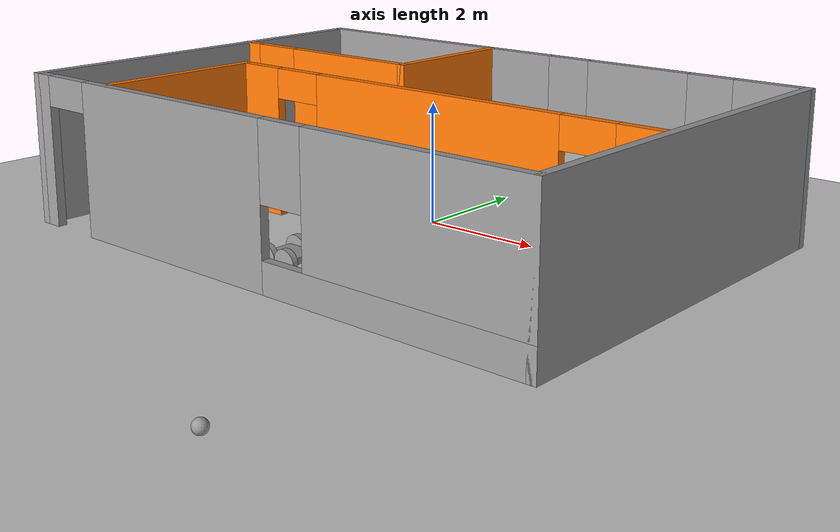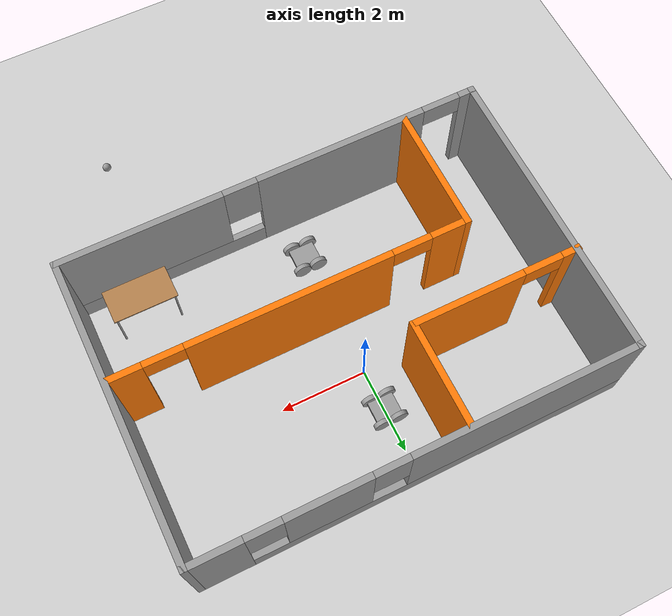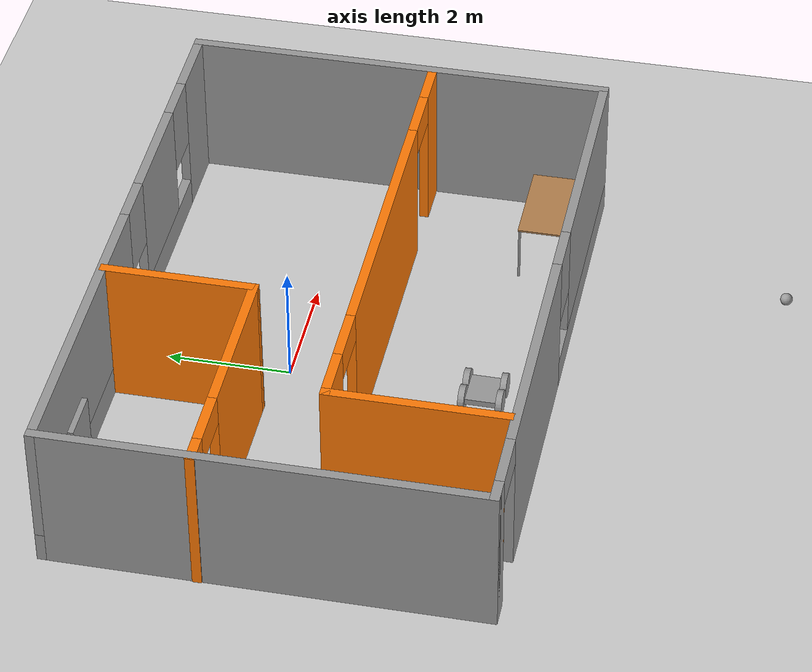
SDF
<sdf version="1.6">
 <world name="default">
  <plugin name="hello" filename="libhello.so"/>
  <light name="sun" type="directional">
   <pose>0 0 10 0 -0 0</pose>
   <diffuse>0.8 0.8 0.8 1</diffuse>
   <specular>0.2 0.2 0.2 1</specular>
   <attenuation>
    <range>1000</range>
    <constant>0.9</constant>
    <linear>0.01</linear>
    <quadratic>0.001</quadratic>
   </attenuation>
   <direction>-0.5 0.1 -0.9</direction>
  </light>
  <model name="ground_plane">
   <static>1</static>
   <link name="link">
    <collision name="collision">
     <geometry><plane><normal>0 0 1</normal><size>100 100</size></plane></geometry>
     <surface>
      <contact><collide_bitmask>65535</collide_bitmask></contact>
      <friction><ode><mu>100</mu><mu2>50</mu2></ode></friction>
     </surface>
    </collision>
    <visual name="visual">
     <cast_shadows>0</cast_shadows>
     <geometry><plane><normal>0 0 1</normal><size>100 100</size></plane></geometry>
     <material>
      <script><uri>file://media/materials/scripts/gazebo.material</uri><name>Gazebo/Grey</name></script>
     </material>
    </visual>
   </link>
  </model>
  <gravity>0 0 -9.8</gravity>
  <magnetic_field>6e-06 2.3e-05 -4.2e-05</magnetic_field>
  <atmosphere type="adiabatic"/>
  <physics name="default_physics" default="0" type="ode">
   <max_step_size>0.001</max_step_size>
   <real_time_factor>1</real_time_factor>
   <real_time_update_rate>1000</real_time_update_rate>
  </physics>
  <scene><ambient>0.4 0.4 0.4 1</ambient><background>0.7 0.7 0.7 1</background><shadows>1</shadows></scene>
  <spherical_coordinates>
   <surface_model>EARTH_WGS84</surface_model>
   <latitude_deg>0</latitude_deg>
   <longitude_deg>0</longitude_deg>
   <elevation>0</elevation>
   <heading_deg>0</heading_deg>
  </spherical_coordinates>
  <model name="MyRobot">
   <link name="link_0">
    <pose>0 0 -8.6e-05 0 -0 0</pose>
    <inertial>
     <mass>1</mass>
     <inertia>
      <ixx>0.166667</ixx>
      <ixy>0</ixy>
      <ixz>0</ixz>
      <iyy>0.166667</iyy>
      <iyz>0</iyz>
      <izz>0.166667</izz>
     </inertia>
    </inertial>
    <visual name="visual">
     <geometry><box><size>0.6 0.5 0.1</size></box></geometry>
     <material>
      <lighting>1</lighting>
      <script><uri>file://media/materials/scripts/gazebo.material</uri><name>Gazebo/Grey</name></script>
      <shader type="pixel"><normal_map>__default__</normal_map></shader>
      <ambient>0.3 0.3 0.3 1</ambient>
      <diffuse>0.7 0.7 0.7 1</diffuse>
      <specular>0.01 0.01 0.01 1</specular>
      <emissive>0 0 0 1</emissive>
     </material>
    </visual>
    <collision name="collision">
     <geometry><box><size>0.6 0.5 0.1</size></box></geometry>
     <surface>
      <friction>
       <ode><mu>1</mu><mu2>1</mu2><fdir1>0 0 0</fdir1><slip1>0</slip1><slip2>0</slip2></ode>
       <torsional>
        <coefficient>1</coefficient>
        <patch_radius>0</patch_radius>
        <surface_radius>0</surface_radius>
        <use_patch_radius>1</use_patch_radius>
        <ode><slip>0</slip></ode>
       </torsional>
      </friction>
      <bounce><restitution_coefficient>0</restitution_coefficient><threshold>1e+06</threshold></bounce>
      <contact>
       <collide_without_contact>0</collide_without_contact>
       <collide_without_contact_bitmask>1</collide_without_contact_bitmask>
       <collide_bitmask>1</collide_bitmask>
       <ode>
        <soft_cfm>0</soft_cfm>
        <soft_erp>0.2</soft_erp>
        <kp>1e+13</kp>
        <kd>1</kd>
        <max_vel>0.01</max_vel>
        <min_depth>0</min_depth>
       </ode>
       <bullet>
        <split_impulse>1</split_impulse>
        <split_impulse_penetration_threshold>-0.01</split_impulse_penetration_threshold>
        <soft_cfm>0</soft_cfm>
        <soft_erp>0.2</soft_erp>
        <kp>1e+13</kp>
        <kd>1</kd>
       </bullet>
      </contact>
     </surface>
    </collision>
   </link>
   <link name="link_1">
    <pose>0.2 -0.300019 2.1e-05 1.5707 -0 0</pose>
    <inertial>
     <mass>1</mass>
     <inertia><ixx>0.145833</ixx><ixy>0</ixy><ixz>0</ixz><iyy>0.145833</iyy><iyz>0</iyz><izz>0.125</izz></inertia>
    </inertial>
    <visual name="visual">
     <geometry><cylinder><radius>0.2</radius><length>0.1</length></cylinder></geometry>
     <material>
      <lighting>1</lighting>
      <script><uri>file://media/materials/scripts/gazebo.material</uri><name>Gazebo/Grey</name></script>
      <shader type="pixel"><normal_map>__default__</normal_map></shader>
      <ambient>0.3 0.3 0.3 1</ambient>
      <diffuse>0.7 0.7 0.7 1</diffuse>
      <specular>0.01 0.01 0.01 1</specular>
      <emissive>0 0 0 1</emissive>
     </material>
    </visual>
    <collision name="collision">
     <geometry><cylinder><radius>0.2</radius><length>0.1</length></cylinder></geometry>
     <surface>
      <friction>
       <ode><mu>1</mu><mu2>1</mu2><fdir1>0 0 0</fdir1><slip1>0</slip1><slip2>0</slip2></ode>
       <torsional>
        <coefficient>1</coefficient>
        <patch_radius>0</patch_radius>
        <surface_radius>0</surface_radius>
        <use_patch_radius>1</use_patch_radius>
        <ode><slip>0</slip></ode>
       </torsional>
      </friction>
      <bounce><restitution_coefficient>0</restitution_coefficient><threshold>1e+06</threshold></bounce>
      <contact>
       <collide_without_contact>0</collide_without_contact>
       <collide_without_contact_bitmask>1</collide_without_contact_bitmask>
       <collide_bitmask>1</collide_bitmask>
       <ode>
        <soft_cfm>0</soft_cfm>
        <soft_erp>0.2</soft_erp>
        <kp>1e+13</kp>
        <kd>1</kd>
        <max_vel>0.01</max_vel>
        <min_depth>0</min_depth>
       </ode>
       <bullet>
        <split_impulse>1</split_impulse>
        <split_impulse_penetration_threshold>-0.01</split_impulse_penetration_threshold>
        <soft_cfm>0</soft_cfm>
        <soft_erp>0.2</soft_erp>
        <kp>1e+13</kp>
        <kd>1</kd>
       </bullet>
      </contact>
     </surface>
    </collision>
   </link>
   <link name="link_1_clone">
    <pose>0.2 0.300019 2.1e-05 1.5707 -0 0</pose>
    <inertial>
     <mass>1</mass>
     <inertia><ixx>0.145833</ixx><ixy>0</ixy><ixz>0</ixz><iyy>0.145833</iyy><iyz>0</iyz><izz>0.125</izz></inertia>
    </inertial>
    <visual name="visual">
     <geometry><cylinder><radius>0.2</radius><length>0.1</length></cylinder></geometry>
     <material>
      <lighting>1</lighting>
      <script><uri>file://media/materials/scripts/gazebo.material</uri><name>Gazebo/Grey</name></script>
      <shader type="pixel"><normal_map>__default__</normal_map></shader>
      <ambient>0.3 0.3 0.3 1</ambient>
      <diffuse>0.7 0.7 0.7 1</diffuse>
      <specular>0.01 0.01 0.01 1</specular>
      <emissive>0 0 0 1</emissive>
     </material>
    </visual>
    <collision name="collision">
     <geometry><cylinder><radius>0.2</radius><length>0.1</length></cylinder></geometry>
     <surface>
      <friction>
       <ode><mu>1</mu><mu2>1</mu2><fdir1>0 0 0</fdir1><slip1>0</slip1><slip2>0</slip2></ode>
       <torsional>
        <coefficient>1</coefficient>
        <patch_radius>0</patch_radius>
        <surface_radius>0</surface_radius>
        <use_patch_radius>1</use_patch_radius>
        <ode><slip>0</slip></ode>
       </torsional>
      </friction>
      <bounce><restitution_coefficient>0</restitution_coefficient><threshold>1e+06</threshold></bounce>
      <contact>
       <collide_without_contact>0</collide_without_contact>
       <collide_without_contact_bitmask>1</collide_without_contact_bitmask>
       <collide_bitmask>1</collide_bitmask>
       <ode>
        <soft_cfm>0</soft_cfm>
        <soft_erp>0.2</soft_erp>
        <kp>1e+13</kp>
        <kd>1</kd>
        <max_vel>0.01</max_vel>
        <min_depth>0</min_depth>
       </ode>
       <bullet>
        <split_impulse>1</split_impulse>
        <split_impulse_penetration_threshold>-0.01</split_impulse_penetration_threshold>
        <soft_cfm>0</soft_cfm>
        <soft_erp>0.2</soft_erp>
        <kp>1e+13</kp>
        <kd>1</kd>
       </bullet>
      </contact>
     </surface>
    </collision>
   </link>
   <link name="link_1_clone_0">
    <pose>-0.2 0.300019 2.1e-05 1.5707 -0 0</pose>
    <inertial>
     <mass>1</mass>
     <inertia><ixx>0.145833</ixx><ixy>0</ixy><ixz>0</ixz><iyy>0.145833</iyy><iyz>0</iyz><izz>0.125</izz></inertia>
    </inertial>
    <visual name="visual">
     <geometry><cylinder><radius>0.2</radius><length>0.1</length></cylinder></geometry>
     <material>
      <lighting>1</lighting>
      <script><uri>file://media/materials/scripts/gazebo.material</uri><name>Gazebo/Grey</name></script>
      <shader type="pixel"><normal_map>__default__</normal_map></shader>
      <ambient>0.3 0.3 0.3 1</ambient>
      <diffuse>0.7 0.7 0.7 1</diffuse>
      <specular>0.01 0.01 0.01 1</specular>
      <emissive>0 0 0 1</emissive>
     </material>
    </visual>
    <collision name="collision">
     <geometry><cylinder><radius>0.2</radius><length>0.1</length></cylinder></geometry>
     <surface>
      <friction>
       <ode><mu>1</mu><mu2>1</mu2><fdir1>0 0 0</fdir1><slip1>0</slip1><slip2>0</slip2></ode>
       <torsional>
        <coefficient>1</coefficient>
        <patch_radius>0</patch_radius>
        <surface_radius>0</surface_radius>
        <use_patch_radius>1</use_patch_radius>
        <ode><slip>0</slip></ode>
       </torsional>
      </friction>
      <bounce><restitution_coefficient>0</restitution_coefficient><threshold>1e+06</threshold></bounce>
      <contact>
       <collide_without_contact>0</collide_without_contact>
       <collide_without_contact_bitmask>1</collide_without_contact_bitmask>
       <collide_bitmask>1</collide_bitmask>
       <ode>
        <soft_cfm>0</soft_cfm>
        <soft_erp>0.2</soft_erp>
        <kp>1e+13</kp>
        <kd>1</kd>
        <max_vel>0.01</max_vel>
        <min_depth>0</min_depth>
       </ode>
       <bullet>
        <split_impulse>1</split_impulse>
        <split_impulse_penetration_threshold>-0.01</split_impulse_penetration_threshold>
        <soft_cfm>0</soft_cfm>
        <soft_erp>0.2</soft_erp>
        <kp>1e+13</kp>
        <kd>1</kd>
       </bullet>
      </contact>
     </surface>
    </collision>
   </link>
   <link name="link_1_clone_1">
    <pose>-0.2 -0.300019 2.1e-05 1.5707 -0 0</pose>
    <inertial>
     <mass>1</mass>
     <inertia><ixx>0.145833</ixx><ixy>0</ixy><ixz>0</ixz><iyy>0.145833</iyy><iyz>0</iyz><izz>0.125</izz></inertia>
    </inertial>
    <visual name="visual">
     <geometry><cylinder><radius>0.2</radius><length>0.1</length></cylinder></geometry>
     <material>
      <lighting>1</lighting>
      <script><uri>file://media/materials/scripts/gazebo.material</uri><name>Gazebo/Grey</name></script>
      <shader type="pixel"><normal_map>__default__</normal_map></shader>
      <ambient>0.3 0.3 0.3 1</ambient>
      <diffuse>0.7 0.7 0.7 1</diffuse>
      <specular>0.01 0.01 0.01 1</specular>
      <emissive>0 0 0 1</emissive>
     </material>
    </visual>
    <collision name="collision">
     <geometry><cylinder><radius>0.2</radius><length>0.1</length></cylinder></geometry>
     <surface>
      <friction>
       <ode><mu>1</mu><mu2>1</mu2><fdir1>0 0 0</fdir1><slip1>0</slip1><slip2>0</slip2></ode>
       <torsional>
        <coefficient>1</coefficient>
        <patch_radius>0</patch_radius>
        <surface_radius>0</surface_radius>
        <use_patch_radius>1</use_patch_radius>
        <ode><slip>0</slip></ode>
       </torsional>
      </friction>
      <bounce><restitution_coefficient>0</restitution_coefficient><threshold>1e+06</threshold></bounce>
      <contact>
       <collide_without_contact>0</collide_without_contact>
       <collide_without_contact_bitmask>1</collide_without_contact_bitmask>
       <collide_bitmask>1</collide_bitmask>
       <ode>
        <soft_cfm>0</soft_cfm>
        <soft_erp>0.2</soft_erp>
        <kp>1e+13</kp>
        <kd>1</kd>
        <max_vel>0.01</max_vel>
        <min_depth>0</min_depth>
       </ode>
       <bullet>
        <split_impulse>1</split_impulse>
        <split_impulse_penetration_threshold>-0.01</split_impulse_penetration_threshold>
        <soft_cfm>0</soft_cfm>
        <soft_erp>0.2</soft_erp>
        <kp>1e+13</kp>
        <kd>1</kd>
       </bullet>
      </contact>
     </surface>
    </collision>
   </link>
   <joint name="link_0_JOINT_0" type="revolute">
    <parent>link_0</parent>
    <child>link_1</child>
    <axis>
     <xyz>0 0 1</xyz>
     <use_parent_model_frame>0</use_parent_model_frame>
     <limit>
      <lower>-1.79769e+308</lower>
      <upper>1.79769e+308</upper>
      <effort>-1</effort>
      <velocity>-1</velocity>
     </limit>
     <dynamics>
      <spring_reference>0</spring_reference>
      <spring_stiffness>0</spring_stiffness>
      <damping>0</damping>
      <friction>0</friction>
     </dynamics>
    </axis>
    <physics>
     <ode><limit><cfm>0</cfm><erp>0.2</erp></limit><suspension><cfm>0</cfm><erp>0.2</erp></suspension></ode>
    </physics>
   </joint>
   <joint name="link_0_JOINT_1" type="revolute">
    <parent>link_0</parent>
    <child>link_1_clone_1</child>
    <axis>
     <xyz>0 0 1</xyz>
     <use_parent_model_frame>0</use_parent_model_frame>
     <limit>
      <lower>-1.79769e+308</lower>
      <upper>1.79769e+308</upper>
      <effort>-1</effort>
      <velocity>-1</velocity>
     </limit>
     <dynamics>
      <spring_reference>0</spring_reference>
      <spring_stiffness>0</spring_stiffness>
      <damping>0</damping>
     </dynamics>
    </axis>
    <physics>
     <ode><limit><cfm>0</cfm><erp>0.2</erp></limit><suspension><cfm>0</cfm><erp>0.2</erp></suspension></ode>
    </physics>
   </joint>
   <joint name="link_0_JOINT_2" type="revolute">
    <parent>link_0</parent>
    <child>link_1_clone_0</child>
    <axis>
     <xyz>0 0 1</xyz>
     <use_parent_model_frame>0</use_parent_model_frame>
     <limit>
      <lower>-1.79769e+308</lower>
      <upper>1.79769e+308</upper>
      <effort>-1</effort>
      <velocity>-1</velocity>
     </limit>
     <dynamics>
      <spring_reference>0</spring_reference>
      <spring_stiffness>0</spring_stiffness>
      <damping>0</damping>
     </dynamics>
    </axis>
    <physics>
     <ode><limit><cfm>0</cfm><erp>0.2</erp></limit><suspension><cfm>0</cfm><erp>0.2</erp></suspension></ode>
    </physics>
   </joint>
   <joint name="link_0_JOINT_3" type="revolute">
    <parent>link_0</parent>
    <child>link_1_clone</child>
    <axis>
     <xyz>0 0 1</xyz>
     <use_parent_model_frame>0</use_parent_model_frame>
     <limit>
      <lower>-1.79769e+308</lower>
      <upper>1.79769e+308</upper>
      <effort>-1</effort>
      <velocity>-1</velocity>
     </limit>
     <dynamics>
      <spring_reference>0</spring_reference>
      <spring_stiffness>0</spring_stiffness>
      <damping>0</damping>
     </dynamics>
    </axis>
    <physics>
     <ode><limit><cfm>0</cfm><erp>0.2</erp></limit><suspension><cfm>0</cfm><erp>0.2</erp></suspension></ode>
    </physics>
   </joint>
   <static>0</static>
   <pose>-0.001163 0.998009 0.199984 3e-06 4e-06 -0.002136</pose>
  </model>
  <model name="MyRobot_clone">
   <link name="link_0">
    <pose>0 0 -8.6e-05 0 -0 0</pose>
    <inertial>
     <mass>1</mass>
     <inertia>
      <ixx>0.166667</ixx>
      <ixy>0</ixy>
      <ixz>0</ixz>
      <iyy>0.166667</iyy>
      <iyz>0</iyz>
      <izz>0.166667</izz>
     </inertia>
    </inertial>
    <visual name="visual">
     <geometry><box><size>0.6 0.5 0.1</size></box></geometry>
     <material>
      <lighting>1</lighting>
      <script><uri>file://media/materials/scripts/gazebo.material</uri><name>Gazebo/Grey</name></script>
      <shader type="pixel"><normal_map>__default__</normal_map></shader>
      <ambient>0.3 0.3 0.3 1</ambient>
      <diffuse>0.7 0.7 0.7 1</diffuse>
      <specular>0.01 0.01 0.01 1</specular>
      <emissive>0 0 0 1</emissive>
     </material>
    </visual>
    <collision name="collision">
     <geometry><box><size>0.6 0.5 0.1</size></box></geometry>
     <surface>
      <friction>
       <ode><mu>1</mu><mu2>1</mu2><fdir1>0 0 0</fdir1><slip1>0</slip1><slip2>0</slip2></ode>
       <torsional>
        <coefficient>1</coefficient>
        <patch_radius>0</patch_radius>
        <surface_radius>0</surface_radius>
        <use_patch_radius>1</use_patch_radius>
        <ode><slip>0</slip></ode>
       </torsional>
      </friction>
      <bounce><restitution_coefficient>0</restitution_coefficient><threshold>1e+06</threshold></bounce>
      <contact>
       <collide_without_contact>0</collide_without_contact>
       <collide_without_contact_bitmask>1</collide_without_contact_bitmask>
       <collide_bitmask>1</collide_bitmask>
       <ode>
        <soft_cfm>0</soft_cfm>
        <soft_erp>0.2</soft_erp>
        <kp>1e+13</kp>
        <kd>1</kd>
        <max_vel>0.01</max_vel>
        <min_depth>0</min_depth>
       </ode>
       <bullet>
        <split_impulse>1</split_impulse>
        <split_impulse_penetration_threshold>-0.01</split_impulse_penetration_threshold>
        <soft_cfm>0</soft_cfm>
        <soft_erp>0.2</soft_erp>
        <kp>1e+13</kp>
        <kd>1</kd>
       </bullet>
      </contact>
     </surface>
    </collision>
   </link>
   <link name="link_1">
    <pose>0.2 -0.300019 2.1e-05 1.5707 -0 0</pose>
    <inertial>
     <mass>1</mass>
     <inertia><ixx>0.145833</ixx><ixy>0</ixy><ixz>0</ixz><iyy>0.145833</iyy><iyz>0</iyz><izz>0.125</izz></inertia>
    </inertial>
    <visual name="visual">
     <geometry><cylinder><radius>0.2</radius><length>0.1</length></cylinder></geometry>
     <material>
      <lighting>1</lighting>
      <script><uri>file://media/materials/scripts/gazebo.material</uri><name>Gazebo/Grey</name></script>
      <shader type="pixel"><normal_map>__default__</normal_map></shader>
      <ambient>0.3 0.3 0.3 1</ambient>
      <diffuse>0.7 0.7 0.7 1</diffuse>
      <specular>0.01 0.01 0.01 1</specular>
      <emissive>0 0 0 1</emissive>
     </material>
    </visual>
    <collision name="collision">
     <geometry><cylinder><radius>0.2</radius><length>0.1</length></cylinder></geometry>
     <surface>
      <friction>
       <ode><mu>1</mu><mu2>1</mu2><fdir1>0 0 0</fdir1><slip1>0</slip1><slip2>0</slip2></ode>
       <torsional>
        <coefficient>1</coefficient>
        <patch_radius>0</patch_radius>
        <surface_radius>0</surface_radius>
        <use_patch_radius>1</use_patch_radius>
        <ode><slip>0</slip></ode>
       </torsional>
      </friction>
      <bounce><restitution_coefficient>0</restitution_coefficient><threshold>1e+06</threshold></bounce>
      <contact>
       <collide_without_contact>0</collide_without_contact>
       <collide_without_contact_bitmask>1</collide_without_contact_bitmask>
       <collide_bitmask>1</collide_bitmask>
       <ode>
        <soft_cfm>0</soft_cfm>
        <soft_erp>0.2</soft_erp>
        <kp>1e+13</kp>
        <kd>1</kd>
        <max_vel>0.01</max_vel>
        <min_depth>0</min_depth>
       </ode>
       <bullet>
        <split_impulse>1</split_impulse>
        <split_impulse_penetration_threshold>-0.01</split_impulse_penetration_threshold>
        <soft_cfm>0</soft_cfm>
        <soft_erp>0.2</soft_erp>
        <kp>1e+13</kp>
        <kd>1</kd>
       </bullet>
      </contact>
     </surface>
    </collision>
   </link>
   <link name="link_1_clone">
    <pose>0.2 0.300019 2.1e-05 1.5707 -0 0</pose>
    <inertial>
     <mass>1</mass>
     <inertia><ixx>0.145833</ixx><ixy>0</ixy><ixz>0</ixz><iyy>0.145833</iyy><iyz>0</iyz><izz>0.125</izz></inertia>
    </inertial>
    <visual name="visual">
     <geometry><cylinder><radius>0.2</radius><length>0.1</length></cylinder></geometry>
     <material>
      <lighting>1</lighting>
      <script><uri>file://media/materials/scripts/gazebo.material</uri><name>Gazebo/Grey</name></script>
      <shader type="pixel"><normal_map>__default__</normal_map></shader>
      <ambient>0.3 0.3 0.3 1</ambient>
      <diffuse>0.7 0.7 0.7 1</diffuse>
      <specular>0.01 0.01 0.01 1</specular>
      <emissive>0 0 0 1</emissive>
     </material>
    </visual>
    <collision name="collision">
     <geometry><cylinder><radius>0.2</radius><length>0.1</length></cylinder></geometry>
     <surface>
      <friction>
       <ode><mu>1</mu><mu2>1</mu2><fdir1>0 0 0</fdir1><slip1>0</slip1><slip2>0</slip2></ode>
       <torsional>
        <coefficient>1</coefficient>
        <patch_radius>0</patch_radius>
        <surface_radius>0</surface_radius>
        <use_patch_radius>1</use_patch_radius>
        <ode><slip>0</slip></ode>
       </torsional>
      </friction>
      <bounce><restitution_coefficient>0</restitution_coefficient><threshold>1e+06</threshold></bounce>
      <contact>
       <collide_without_contact>0</collide_without_contact>
       <collide_without_contact_bitmask>1</collide_without_contact_bitmask>
       <collide_bitmask>1</collide_bitmask>
       <ode>
        <soft_cfm>0</soft_cfm>
        <soft_erp>0.2</soft_erp>
        <kp>1e+13</kp>
        <kd>1</kd>
        <max_vel>0.01</max_vel>
        <min_depth>0</min_depth>
       </ode>
       <bullet>
        <split_impulse>1</split_impulse>
        <split_impulse_penetration_threshold>-0.01</split_impulse_penetration_threshold>
        <soft_cfm>0</soft_cfm>
        <soft_erp>0.2</soft_erp>
        <kp>1e+13</kp>
        <kd>1</kd>
       </bullet>
      </contact>
     </surface>
    </collision>
   </link>
   <link name="link_1_clone_0">
    <pose>-0.2 0.300019 2.1e-05 1.5707 -0 0</pose>
    <inertial>
     <mass>1</mass>
     <inertia><ixx>0.145833</ixx><ixy>0</ixy><ixz>0</ixz><iyy>0.145833</iyy><iyz>0</iyz><izz>0.125</izz></inertia>
    </inertial>
    <visual name="visual">
     <geometry><cylinder><radius>0.2</radius><length>0.1</length></cylinder></geometry>
     <material>
      <lighting>1</lighting>
      <script><uri>file://media/materials/scripts/gazebo.material</uri><name>Gazebo/Grey</name></script>
      <shader type="pixel"><normal_map>__default__</normal_map></shader>
      <ambient>0.3 0.3 0.3 1</ambient>
      <diffuse>0.7 0.7 0.7 1</diffuse>
      <specular>0.01 0.01 0.01 1</specular>
      <emissive>0 0 0 1</emissive>
     </material>
    </visual>
    <collision name="collision">
     <geometry><cylinder><radius>0.2</radius><length>0.1</length></cylinder></geometry>
     <surface>
      <friction>
       <ode><mu>1</mu><mu2>1</mu2><fdir1>0 0 0</fdir1><slip1>0</slip1><slip2>0</slip2></ode>
       <torsional>
        <coefficient>1</coefficient>
        <patch_radius>0</patch_radius>
        <surface_radius>0</surface_radius>
        <use_patch_radius>1</use_patch_radius>
        <ode><slip>0</slip></ode>
       </torsional>
      </friction>
      <bounce><restitution_coefficient>0</restitution_coefficient><threshold>1e+06</threshold></bounce>
      <contact>
       <collide_without_contact>0</collide_without_contact>
       <collide_without_contact_bitmask>1</collide_without_contact_bitmask>
       <collide_bitmask>1</collide_bitmask>
       <ode>
        <soft_cfm>0</soft_cfm>
        <soft_erp>0.2</soft_erp>
        <kp>1e+13</kp>
        <kd>1</kd>
        <max_vel>0.01</max_vel>
        <min_depth>0</min_depth>
       </ode>
       <bullet>
        <split_impulse>1</split_impulse>
        <split_impulse_penetration_threshold>-0.01</split_impulse_penetration_threshold>
        <soft_cfm>0</soft_cfm>
        <soft_erp>0.2</soft_erp>
        <kp>1e+13</kp>
        <kd>1</kd>
       </bullet>
      </contact>
     </surface>
    </collision>
   </link>
   <link name="link_1_clone_1">
    <pose>-0.2 -0.300019 2.1e-05 1.5707 -0 0</pose>
    <inertial>
     <mass>1</mass>
     <inertia><ixx>0.145833</ixx><ixy>0</ixy><ixz>0</ixz><iyy>0.145833</iyy><iyz>0</iyz><izz>0.125</izz></inertia>
    </inertial>
    <visual name="visual">
     <geometry><cylinder><radius>0.2</radius><length>0.1</length></cylinder></geometry>
     <material>
      <lighting>1</lighting>
      <script><uri>file://media/materials/scripts/gazebo.material</uri><name>Gazebo/Grey</name></script>
      <shader type="pixel"><normal_map>__default__</normal_map></shader>
      <ambient>0.3 0.3 0.3 1</ambient>
      <diffuse>0.7 0.7 0.7 1</diffuse>
      <specular>0.01 0.01 0.01 1</specular>
      <emissive>0 0 0 1</emissive>
     </material>
    </visual>
    <collision name="collision">
     <geometry><cylinder><radius>0.2</radius><length>0.1</length></cylinder></geometry>
     <surface>
      <friction>
       <ode><mu>1</mu><mu2>1</mu2><fdir1>0 0 0</fdir1><slip1>0</slip1><slip2>0</slip2></ode>
       <torsional>
        <coefficient>1</coefficient>
        <patch_radius>0</patch_radius>
        <surface_radius>0</surface_radius>
        <use_patch_radius>1</use_patch_radius>
        <ode><slip>0</slip></ode>
       </torsional>
      </friction>
      <bounce><restitution_coefficient>0</restitution_coefficient><threshold>1e+06</threshold></bounce>
      <contact>
       <collide_without_contact>0</collide_without_contact>
       <collide_without_contact_bitmask>1</collide_without_contact_bitmask>
       <collide_bitmask>1</collide_bitmask>
       <ode>
        <soft_cfm>0</soft_cfm>
        <soft_erp>0.2</soft_erp>
        <kp>1e+13</kp>
        <kd>1</kd>
        <max_vel>0.01</max_vel>
        <min_depth>0</min_depth>
       </ode>
       <bullet>
        <split_impulse>1</split_impulse>
        <split_impulse_penetration_threshold>-0.01</split_impulse_penetration_threshold>
        <soft_cfm>0</soft_cfm>
        <soft_erp>0.2</soft_erp>
        <kp>1e+13</kp>
        <kd>1</kd>
       </bullet>
      </contact>
     </surface>
    </collision>
   </link>
   <joint name="link_0_JOINT_0" type="revolute">
    <parent>link_0</parent>
    <child>link_1</child>
    <axis>
     <xyz>0 0 1</xyz>
     <use_parent_model_frame>0</use_parent_model_frame>
     <limit>
      <lower>-1.79769e+308</lower>
      <upper>1.79769e+308</upper>
      <effort>-1</effort>
      <velocity>-1</velocity>
     </limit>
     <dynamics>
      <spring_reference>0</spring_reference>
      <spring_stiffness>0</spring_stiffness>
      <damping>0</damping>
      <friction>0</friction>
     </dynamics>
    </axis>
    <physics>
     <ode><limit><cfm>0</cfm><erp>0.2</erp></limit><suspension><cfm>0</cfm><erp>0.2</erp></suspension></ode>
    </physics>
   </joint>
   <joint name="link_0_JOINT_1" type="revolute">
    <parent>link_0</parent>
    <child>link_1_clone_1</child>
    <axis>
     <xyz>0 0 1</xyz>
     <use_parent_model_frame>0</use_parent_model_frame>
     <limit>
      <lower>-1.79769e+308</lower>
      <upper>1.79769e+308</upper>
      <effort>-1</effort>
      <velocity>-1</velocity>
     </limit>
     <dynamics>
      <spring_reference>0</spring_reference>
      <spring_stiffness>0</spring_stiffness>
      <damping>0</damping>
     </dynamics>
    </axis>
    <physics>
     <ode><limit><cfm>0</cfm><erp>0.2</erp></limit><suspension><cfm>0</cfm><erp>0.2</erp></suspension></ode>
    </physics>
   </joint>
   <joint name="link_0_JOINT_2" type="revolute">
    <parent>link_0</parent>
    <child>link_1_clone_0</child>
    <axis>
     <xyz>0 0 1</xyz>
     <use_parent_model_frame>0</use_parent_model_frame>
     <limit>
      <lower>-1.79769e+308</lower>
      <upper>1.79769e+308</upper>
      <effort>-1</effort>
      <velocity>-1</velocity>
     </limit>
     <dynamics>
      <spring_reference>0</spring_reference>
      <spring_stiffness>0</spring_stiffness>
      <damping>0</damping>
     </dynamics>
    </axis>
    <physics>
     <ode><limit><cfm>0</cfm><erp>0.2</erp></limit><suspension><cfm>0</cfm><erp>0.2</erp></suspension></ode>
    </physics>
   </joint>
   <joint name="link_0_JOINT_3" type="revolute">
    <parent>link_0</parent>
    <child>link_1_clone</child>
    <axis>
     <xyz>0 0 1</xyz>
     <use_parent_model_frame>0</use_parent_model_frame>
     <limit>
      <lower>-1.79769e+308</lower>
      <upper>1.79769e+308</upper>
      <effort>-1</effort>
      <velocity>-1</velocity>
     </limit>
     <dynamics>
      <spring_reference>0</spring_reference>
      <spring_stiffness>0</spring_stiffness>
      <damping>0</damping>
     </dynamics>
    </axis>
    <physics>
     <ode><limit><cfm>0</cfm><erp>0.2</erp></limit><suspension><cfm>0</cfm><erp>0.2</erp></suspension></ode>
    </physics>
   </joint>
   <static>0</static>
   <pose>-0.046063 -3.13667 0.199984 3e-06 4e-06 -0.002147</pose>
  </model>
  <model name="MyBuilding_0">
   <pose>0.16674 -0.73219 0 0 -0 0</pose>
   <link name="Wall_53">
    <pose>0.008644 -3.425 0 0 -0 0</pose>
    <visual name="Wall_53_Visual_0">
     <pose>-4.79387 0 1.25 0 -0 0</pose>
     <geometry><box><size>0.412255 0.15 2.5</size></box></geometry>
     <material>
      <script><uri>file://media/materials/scripts/gazebo.material</uri><name>Gazebo/Grey</name></script>
      <ambient>1 1 1 1</ambient>
     </material>
     <meta><layer>0</layer></meta>
    </visual>
    <collision name="Wall_53_Collision_0">
     <geometry><box><size>0.412255 0.15 2.5</size></box></geometry>
     <pose>-4.79387 0 1.25 0 -0 0</pose>
    </collision>
    <visual name="Wall_53_Visual_1">
     <pose>-1.66895 0 1.25 0 -0 0</pose>
     <geometry><box><size>4.0376 0.15 2.5</size></box></geometry>
     <material>
      <script><uri>file://media/materials/scripts/gazebo.material</uri><name>Gazebo/Grey</name></script>
      <ambient>1 1 1 1</ambient>
     </material>
     <meta><layer>0</layer></meta>
    </visual>
    <collision name="Wall_53_Collision_1">
     <geometry><box><size>4.0376 0.15 2.5</size></box></geometry>
     <pose>-1.66895 0 1.25 0 -0 0</pose>
    </collision>
    <visual name="Wall_53_Visual_2">
     <pose>2.67493 0 0.25 0 -0 0</pose>
     <geometry><box><size>4.65015 0.15 0.5</size></box></geometry>
     <material>
      <script><uri>file://media/materials/scripts/gazebo.material</uri><name>Gazebo/Grey</name></script>
      <ambient>1 1 1 1</ambient>
     </material>
     <meta><layer>0</layer></meta>
    </visual>
    <collision name="Wall_53_Collision_2">
     <geometry><box><size>4.65015 0.15 0.5</size></box></geometry>
     <pose>2.67493 0 0.25 0 -0 0</pose>
    </collision>
    <visual name="Wall_53_Visual_3">
     <pose>3.07493 0 1.5 0 -0 0</pose>
     <geometry><box><size>3.85015 0.15 2</size></box></geometry>
     <material>
      <script><uri>file://media/materials/scripts/gazebo.material</uri><name>Gazebo/Grey</name></script>
      <ambient>1 1 1 1</ambient>
     </material>
     <meta><layer>0</layer></meta>
    </visual>
    <collision name="Wall_53_Collision_3">
     <geometry><box><size>3.85015 0.15 2</size></box></geometry>
     <pose>3.07493 0 1.5 0 -0 0</pose>
    </collision>
    <visual name="Wall_53_Visual_4">
     <pose>0.749853 0 1.9 0 -0 0</pose>
     <geometry><box><size>0.8 0.15 1.2</size></box></geometry>
     <material>
      <script><uri>file://media/materials/scripts/gazebo.material</uri><name>Gazebo/Grey</name></script>
      <ambient>1 1 1 1</ambient>
     </material>
     <meta><layer>0</layer></meta>
    </visual>
    <collision name="Wall_53_Collision_4">
     <geometry><box><size>0.8 0.15 1.2</size></box></geometry>
     <pose>0.749853 0 1.9 0 -0 0</pose>
    </collision>
    <visual name="Wall_53_Visual_5">
     <pose>-4.13774 0 2.25 0 -0 0</pose>
     <geometry><box><size>0.9 0.15 0.5</size></box></geometry>
     <material>
      <script><uri>file://media/materials/scripts/gazebo.material</uri><name>Gazebo/Grey</name></script>
      <ambient>1 1 1 1</ambient>
     </material>
     <meta><layer>0</layer></meta>
    </visual>
    <collision name="Wall_53_Collision_5">
     <geometry><box><size>0.9 0.15 0.5</size></box></geometry>
     <pose>-4.13774 0 2.25 0 -0 0</pose>
    </collision>
   </link>
   <link name="Wall_54">
    <collision name="Wall_54_Collision">
     <geometry><box><size>7 0.15 2.5</size></box></geometry>
     <pose>0 0 1.25 0 -0 0</pose>
    </collision>
    <visual name="Wall_54_Visual">
     <pose>0 0 1.25 0 -0 0</pose>
     <geometry><box><size>7 0.15 2.5</size></box></geometry>
     <material>
      <script><uri>file://media/materials/scripts/gazebo.material</uri><name>Gazebo/Grey</name></script>
      <ambient>1 1 1 1</ambient>
     </material>
     <meta><layer>0</layer></meta>
    </visual>
    <pose>4.93364 0 0 0 -0 1.5708</pose>
   </link>
   <link name="Wall_55">
    <pose>0.008644 3.425 0 0 -0 3.14159</pose>
    <visual name="Wall_55_Visual_0">
     <pose>-4.36219 0 1.25 0 -0 0</pose>
     <geometry><box><size>1.27561 0.15 2.5</size></box></geometry>
     <material>
      <script><uri>file://media/materials/scripts/gazebo.material</uri><name>Gazebo/Grey</name></script>
      <ambient>1 1 1 1</ambient>
     </material>
     <meta><layer>0</layer></meta>
    </visual>
    <collision name="Wall_55_Collision_0">
     <geometry><box><size>1.27561 0.15 2.5</size></box></geometry>
     <pose>-4.36219 0 1.25 0 -0 0</pose>
    </collision>
    <visual name="Wall_55_Visual_1">
     <pose>0.637805 0 0.25 0 -0 0</pose>
     <geometry><box><size>8.72439 0.15 0.5</size></box></geometry>
     <material>
      <script><uri>file://media/materials/scripts/gazebo.material</uri><name>Gazebo/Grey</name></script>
      <ambient>1 1 1 1</ambient>
     </material>
     <meta><layer>0</layer></meta>
    </visual>
    <collision name="Wall_55_Collision_1">
     <geometry><box><size>8.72439 0.15 0.5</size></box></geometry>
     <pose>0.637805 0 0.25 0 -0 0</pose>
    </collision>
    <visual name="Wall_55_Visual_2">
     <pose>-1.97678 0 1.5 0 -0 0</pose>
     <geometry><box><size>1.89522 0.15 2</size></box></geometry>
     <material>
      <script><uri>file://media/materials/scripts/gazebo.material</uri><name>Gazebo/Grey</name></script>
      <ambient>1 1 1 1</ambient>
     </material>
     <meta><layer>0</layer></meta>
    </visual>
    <collision name="Wall_55_Collision_2">
     <geometry><box><size>1.89522 0.15 2</size></box></geometry>
     <pose>-1.97678 0 1.5 0 -0 0</pose>
    </collision>
    <visual name="Wall_55_Visual_3">
     <pose>2.38541 0 1.5 0 -0 0</pose>
     <geometry><box><size>5.22917 0.15 2</size></box></geometry>
     <material>
      <script><uri>file://media/materials/scripts/gazebo.material</uri><name>Gazebo/Grey</name></script>
      <ambient>1 1 1 1</ambient>
     </material>
     <meta><layer>0</layer></meta>
    </visual>
    <collision name="Wall_55_Collision_3">
     <geometry><box><size>5.22917 0.15 2</size></box></geometry>
     <pose>2.38541 0 1.5 0 -0 0</pose>
    </collision>
    <visual name="Wall_55_Visual_4">
     <pose>-3.32439 0 1.9 0 -0 0</pose>
     <geometry><box><size>0.8 0.15 1.2</size></box></geometry>
     <material>
      <script><uri>file://media/materials/scripts/gazebo.material</uri><name>Gazebo/Grey</name></script>
      <ambient>1 1 1 1</ambient>
     </material>
     <meta><layer>0</layer></meta>
    </visual>
    <collision name="Wall_55_Collision_4">
     <geometry><box><size>0.8 0.15 1.2</size></box></geometry>
     <pose>-3.32439 0 1.9 0 -0 0</pose>
    </collision>
    <visual name="Wall_55_Visual_5">
     <pose>-0.629171 0 1.9 0 -0 0</pose>
     <geometry><box><size>0.8 0.15 1.2</size></box></geometry>
     <material>
      <script><uri>file://media/materials/scripts/gazebo.material</uri><name>Gazebo/Grey</name></script>
      <ambient>1 1 1 1</ambient>
     </material>
     <meta><layer>0</layer></meta>
    </visual>
    <collision name="Wall_55_Collision_5">
     <geometry><box><size>0.8 0.15 1.2</size></box></geometry>
     <pose>-0.629171 0 1.9 0 -0 0</pose>
    </collision>
   </link>
   <link name="Wall_58">
    <collision name="Wall_58_Collision">
     <geometry><box><size>7 0.15 2.5</size></box></geometry>
     <pose>0 0 1.25 0 -0 0</pose>
    </collision>
    <visual name="Wall_58_Visual">
     <pose>0 0 1.25 0 -0 0</pose>
     <geometry><box><size>7 0.15 2.5</size></box></geometry>
     <material>
      <script><uri>file://media/materials/scripts/gazebo.material</uri><name>Gazebo/Grey</name></script>
      <ambient>1 1 1 1</ambient>
     </material>
     <meta><layer>0</layer></meta>
    </visual>
    <pose>-4.91636 0 0 0 0 -1.5708</pose>
   </link>
   <link name="Wall_60">
    <pose>-3.00864 1.02827 0 0 -0 0</pose>
    <visual name="Wall_60_Visual_0">
     <pose>-1.77517 0 1.25 0 -0 0</pose>
     <geometry><box><size>0.449656 0.15 2.5</size></box></geometry>
     <material>
      <script><uri>file://media/materials/scripts/gazebo.material</uri><name>Gazebo/Grey</name></script>
      <ambient>0.996078 0.47451 0.0196078 1</ambient>
     </material>
     <meta><layer>0</layer></meta>
    </visual>
    <collision name="Wall_60_Collision_0">
     <geometry><box><size>0.449656 0.15 2.5</size></box></geometry>
     <pose>-1.77517 0 1.25 0 -0 0</pose>
    </collision>
    <visual name="Wall_60_Visual_1">
     <pose>0.674828 0 1.25 0 -0 0</pose>
     <geometry><box><size>2.65034 0.15 2.5</size></box></geometry>
     <material>
      <script><uri>file://media/materials/scripts/gazebo.material</uri><name>Gazebo/Grey</name></script>
      <ambient>0.996078 0.47451 0.0196078 1</ambient>
     </material>
     <meta><layer>0</layer></meta>
    </visual>
    <collision name="Wall_60_Collision_1">
     <geometry><box><size>2.65034 0.15 2.5</size></box></geometry>
     <pose>0.674828 0 1.25 0 -0 0</pose>
    </collision>
    <visual name="Wall_60_Visual_2">
     <pose>-1.10034 0 2.25 0 -0 0</pose>
     <geometry><box><size>0.9 0.15 0.5</size></box></geometry>
     <material>
      <script><uri>file://media/materials/scripts/gazebo.material</uri><name>Gazebo/Grey</name></script>
      <ambient>0.996078 0.47451 0.0196078 1</ambient>
     </material>
     <meta><layer>0</layer></meta>
    </visual>
    <collision name="Wall_60_Collision_2">
     <geometry><box><size>0.9 0.15 0.5</size></box></geometry>
     <pose>-1.10034 0 2.25 0 -0 0</pose>
    </collision>
   </link>
   <link name="Wall_61">
    <collision name="Wall_61_Collision">
     <geometry><box><size>2.5 0.15 2.5</size></box></geometry>
     <pose>0 0 1.25 0 -0 0</pose>
    </collision>
    <visual name="Wall_61_Visual">
     <pose>0 0 1.25 0 -0 0</pose>
     <geometry><box><size>2.5 0.15 2.5</size></box></geometry>
     <material>
      <script><uri>file://media/materials/scripts/gazebo.material</uri><name>Gazebo/Grey</name></script>
      <ambient>0.996078 0.47451 0.0196078 1</ambient>
     </material>
     <meta><layer>0</layer></meta>
    </visual>
    <pose>-1.08364 2.20327 0 0 -0 1.5708</pose>
   </link>
   <link name="Wall_63">
    <collision name="Wall_63_Collision">
     <geometry><box><size>3 0.15 2.5</size></box></geometry>
     <pose>0 0 1.25 0 -0 0</pose>
    </collision>
    <visual name="Wall_63_Visual">
     <pose>0 0 1.25 0 -0 0</pose>
     <geometry><box><size>3 0.15 2.5</size></box></geometry>
     <material>
      <script><uri>file://media/materials/scripts/gazebo.material</uri><name>Gazebo/Grey</name></script>
      <ambient>0.996078 0.47451 0.0196078 1</ambient>
     </material>
     <meta><layer>0</layer></meta>
    </visual>
    <pose>-3.20388 -1.99183 0 0 -0 1.5708</pose>
   </link>
   <link name="Wall_64">
    <pose>0.846123 -0.566832 0 0 -0 0</pose>
    <visual name="Wall_64_Visual_0">
     <pose>-3.65881 0 1.25 0 -0 0</pose>
     <geometry><box><size>0.932382 0.15 2.5</size></box></geometry>
     <material>
      <script><uri>file://media/materials/scripts/gazebo.material</uri><name>Gazebo/Grey</name></script>
      <ambient>0.996078 0.47451 0.0196078 1</ambient>
     </material>
     <meta><layer>0</layer></meta>
    </visual>
    <collision name="Wall_64_Collision_0">
     <geometry><box><size>0.932382 0.15 2.5</size></box></geometry>
     <pose>-3.65881 0 1.25 0 -0 0</pose>
    </collision>
    <visual name="Wall_64_Visual_1">
     <pose>0.053169 0 1.25 0 -0 0</pose>
     <geometry><box><size>4.69157 0.15 2.5</size></box></geometry>
     <material>
      <script><uri>file://media/materials/scripts/gazebo.material</uri><name>Gazebo/Grey</name></script>
      <ambient>0.996078 0.47451 0.0196078 1</ambient>
     </material>
     <meta><layer>0</layer></meta>
    </visual>
    <collision name="Wall_64_Collision_1">
     <geometry><box><size>4.69157 0.15 2.5</size></box></geometry>
     <pose>0.053169 0 1.25 0 -0 0</pose>
    </collision>
    <visual name="Wall_64_Visual_2">
     <pose>3.71198 0 1.25 0 -0 0</pose>
     <geometry><box><size>0.826045 0.15 2.5</size></box></geometry>
     <material>
      <script><uri>file://media/materials/scripts/gazebo.material</uri><name>Gazebo/Grey</name></script>
      <ambient>0.996078 0.47451 0.0196078 1</ambient>
     </material>
     <meta><layer>0</layer></meta>
    </visual>
    <collision name="Wall_64_Collision_2">
     <geometry><box><size>0.826045 0.15 2.5</size></box></geometry>
     <pose>3.71198 0 1.25 0 -0 0</pose>
    </collision>
    <visual name="Wall_64_Visual_3">
     <pose>-2.74262 0 2.25 0 -0 0</pose>
     <geometry><box><size>0.9 0.15 0.5</size></box></geometry>
     <material>
      <script><uri>file://media/materials/scripts/gazebo.material</uri><name>Gazebo/Grey</name></script>
      <ambient>0.996078 0.47451 0.0196078 1</ambient>
     </material>
     <meta><layer>0</layer></meta>
    </visual>
    <collision name="Wall_64_Collision_3">
     <geometry><box><size>0.9 0.15 0.5</size></box></geometry>
     <pose>-2.74262 0 2.25 0 -0 0</pose>
    </collision>
    <visual name="Wall_64_Visual_4">
     <pose>2.84896 0 2.25 0 -0 0</pose>
     <geometry><box><size>0.9 0.15 0.5</size></box></geometry>
     <material>
      <script><uri>file://media/materials/scripts/gazebo.material</uri><name>Gazebo/Grey</name></script>
      <ambient>0.996078 0.47451 0.0196078 1</ambient>
     </material>
     <meta><layer>0</layer></meta>
    </visual>
    <collision name="Wall_64_Collision_4">
     <geometry><box><size>0.9 0.15 0.5</size></box></geometry>
     <pose>2.84896 0 2.25 0 -0 0</pose>
    </collision>
   </link>
   <link name="Window_10">
    <collision name="Window_10_Collision">
     <geometry><box><size>0.8 0.17 0.8</size></box></geometry>
     <pose>0 0 0.4 0 -0 0</pose>
    </collision>
    <visual name="Window_10_Visual">
     <pose>0 0 0.4 0 -0 0</pose>
     <geometry><box><size>0.8 0.17 0.8</size></box></geometry>
     <material>
      <script><uri>file://media/materials/scripts/gazebo.material</uri><name>Gazebo/Grey</name></script>
     </material>
    </visual>
    <pose>-3.16365 3.34133 0.5 0 -0 0</pose>
   </link>
   <static>1</static>
  </model>
  <model name="table">
   <static>1</static>
   <link name="link">
    <collision name="surface">
     <pose>0 0 1 0 -0 0</pose>
     <geometry><box><size>1.5 0.8 0.03</size></box></geometry>
     <surface><friction><ode><mu>0.6</mu><mu2>0.6</mu2></ode></friction></surface>
    </collision>
    <visual name="visual1">
     <pose>0 0 1 0 -0 0</pose>
     <geometry><box><size>1.5 0.8 0.03</size></box></geometry>
     <material>
      <script><uri>file://media/materials/scripts/gazebo.material</uri><name>Gazebo/Wood</name></script>
     </material>
    </visual>
    <collision name="front_left_leg">
     <pose>0.68 0.38 0.5 0 -0 0</pose>
     <geometry><cylinder><radius>0.02</radius><length>1</length></cylinder></geometry>
    </collision>
    <visual name="front_left_leg">
     <pose>0.68 0.38 0.5 0 -0 0</pose>
     <geometry><cylinder><radius>0.02</radius><length>1</length></cylinder></geometry>
     <material>
      <script><uri>file://media/materials/scripts/gazebo.material</uri><name>Gazebo/Grey</name></script>
     </material>
    </visual>
    <collision name="front_right_leg">
     <pose>0.68 -0.38 0.5 0 -0 0</pose>
     <geometry><cylinder><radius>0.02</radius><length>1</length></cylinder></geometry>
    </collision>
    <visual name="front_right_leg">
     <pose>0.68 -0.38 0.5 0 -0 0</pose>
     <geometry><cylinder><radius>0.02</radius><length>1</length></cylinder></geometry>
     <material>
      <script><uri>file://media/materials/scripts/gazebo.material</uri><name>Gazebo/Grey</name></script>
     </material>
    </visual>
    <collision name="back_right_leg">
     <pose>-0.68 -0.38 0.5 0 -0 0</pose>
     <geometry><cylinder><radius>0.02</radius><length>1</length></cylinder></geometry>
    </collision>
    <visual name="back_right_leg">
     <pose>-0.68 -0.38 0.5 0 -0 0</pose>
     <geometry><cylinder><radius>0.02</radius><length>1</length></cylinder></geometry>
     <material>
      <script><uri>file://media/materials/scripts/gazebo.material</uri><name>Gazebo/Grey</name></script>
     </material>
    </visual>
    <collision name="back_left_leg">
     <pose>-0.68 0.38 0.5 0 -0 0</pose>
     <geometry><cylinder><radius>0.02</radius><length>1</length></cylinder></geometry>
    </collision>
    <visual name="back_left_leg">
     <pose>-0.68 0.38 0.5 0 -0 0</pose>
     <geometry><cylinder><radius>0.02</radius><length>1</length></cylinder></geometry>
     <material>
      <script><uri>file://media/materials/scripts/gazebo.material</uri><name>Gazebo/Grey</name></script>
     </material>
    </visual>
   </link>
   <pose>3.7765 -3.51694 0 0 -0 0</pose>
  </model>
  <model name="my_ball">
   <link name="link_0">
    <inertial>
     <mass>1</mass>
     <inertia><ixx>0.1</ixx><ixy>0</ixy><ixz>0</ixz><iyy>0.1</iyy><iyz>0</iyz><izz>0.1</izz></inertia>
    </inertial>
    <visual name="visual">
     <geometry><sphere><radius>0.1</radius></sphere></geometry>
     <material>
      <lighting>1</lighting>
      <script><uri>file://media/materials/scripts/gazebo.material</uri><name>Gazebo/Grey</name></script>
      <shader type="pixel"><normal_map>__default__</normal_map></shader>
      <ambient>1 1 1 1</ambient>
      <diffuse>1 1 1 1</diffuse>
      <specular>1 1 1 1</specular>
      <emissive>1 1 1 1</emissive>
     </material>
    </visual>
    <collision name="collision">
     <geometry><sphere><radius>0.1</radius></sphere></geometry>
     <surface>
      <friction>
       <ode><mu>1</mu><mu2>1</mu2><fdir1>0 0 0</fdir1><slip1>0</slip1><slip2>0</slip2></ode>
       <torsional>
        <coefficient>1</coefficient>
        <patch_radius>0</patch_radius>
        <surface_radius>0</surface_radius>
        <use_patch_radius>1</use_patch_radius>
        <ode><slip>0</slip></ode>
       </torsional>
      </friction>
      <bounce><restitution_coefficient>0</restitution_coefficient><threshold>1e+06</threshold></bounce>
      <contact>
       <collide_without_contact>0</collide_without_contact>
       <collide_without_contact_bitmask>1</collide_without_contact_bitmask>
       <collide_bitmask>1</collide_bitmask>
       <ode>
        <soft_cfm>0</soft_cfm>
        <soft_erp>0.2</soft_erp>
        <kp>1e+13</kp>
        <kd>1</kd>
        <max_vel>0.01</max_vel>
        <min_depth>0</min_depth>
       </ode>
       <bullet>
        <split_impulse>1</split_impulse>
        <split_impulse_penetration_threshold>-0.01</split_impulse_penetration_threshold>
        <soft_cfm>0</soft_cfm>
        <soft_erp>0.2</soft_erp>
        <kp>1e+13</kp>
        <kd>1</kd>
       </bullet>
      </contact>
     </surface>
    </collision>
   </link>
   <static>0</static>
   <pose>3.24049 -7.54605 0.1 0 -0 0</pose>
  </model>
 </world>
</sdf>
